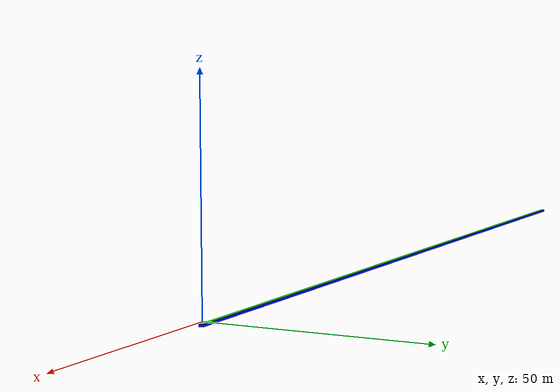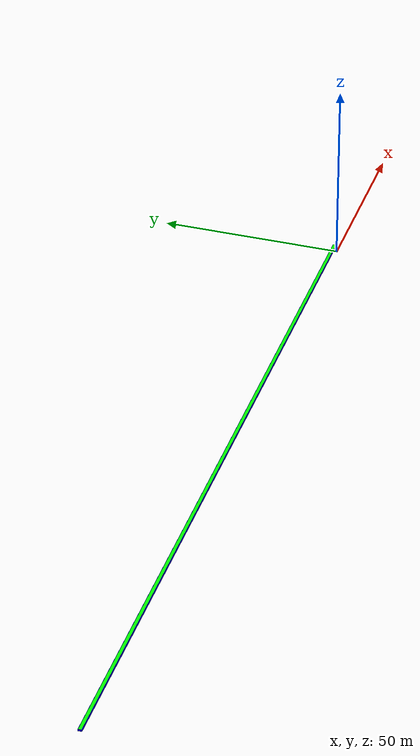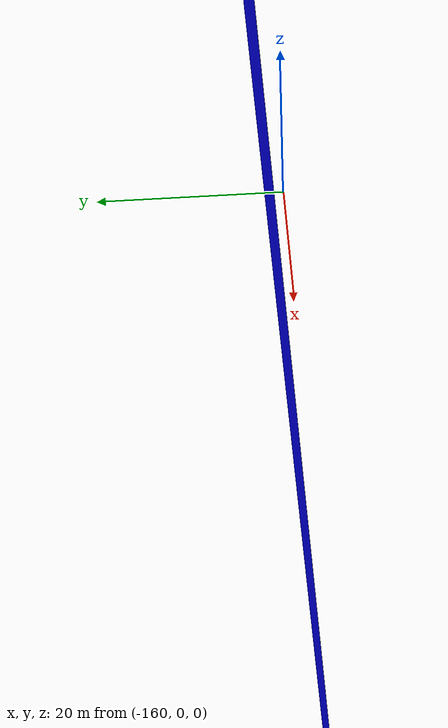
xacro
<robot name="Fliessband">
    <link name="link_2">
        <inertial>
            <origin xyz="-97 1.5 -0.15" rpy="0.0 0.0 0.0"/>
            <mass value="500000"/>
            <inertia ixx="52083.3" ixy="0.0" ixz="0.0" iyy="4.16677e+08" iyz="0.0" izz="4.16708e+08"/>
        </inertial>
        <visual name="">
            <origin xyz="-97 1.5 -0.15" rpy="0.0 0.0 0.0"/>
            <geometry>
                <box size="200 1 0.5"/>
            </geometry>
            <material name="">
                <color rgba="0.0 0.0 1.0 1.0"/>
                <texture filename=""/>
            </material>
        </visual>
        <collision>
            <origin xyz="-97 1.5 -0.15" rpy="0.0 0.0 0.0"/>
            <geometry>
                <box size="200 1 0.5"/>
            </geometry>
        </collision>

    </link>

    <link name="link_2_clone">
        <inertial>
            <origin xyz="-97 1.5 0.15" rpy="0.0 0.0 0.0"/>
            <mass value="20000"/>
            <inertia ixx="1041.67" ixy="0.0" ixz="0.0" iyy="8.33354e+06" iyz="0.0" izz="8.33354e+06"/>
        </inertial>
        <visual name="">
            <origin xyz="-97 1.5 0.15" rpy="0.0 0.0 0.0"/>
            <geometry>
                <box size="200 0.8 0.01"/>
            </geometry>
            <material name="">
                <color rgba="1.0 0.0 0.0 0.0"/>
                <texture filename=""/>
            </material>
        </visual>
        <collision>
            <origin xyz="-97 1.5 0.15" rpy="0.0 0.0 0.0"/>
            <geometry>
                <box size="200 0.8 0.01"/>
            </geometry>
        </collision>
    </link>

    <link name="link_2_clone_clone">
        <inertial>
            <origin xyz="-97 1.5 0.17" rpy="0.0 0.0 0.0"/>
            <mass value="200"/>
            <inertia ixx="10" ixy="0.0" ixz="0.0" iyy="20000" iyz="0.0" izz="20000"/>
        </inertial>
        <visual name="">
            <origin xyz="-97 1.5 0.17" rpy="0.0 0.0 0.0"/>
            <geometry>
                <box size="200 0.8 0.01"/>
            </geometry>
            <material name="">
                <color rgba="0.0 1.0 0.0 0.0"/>
                <texture filename=""/>
            </material>
        </visual>
        <collision>
            <origin xyz="-97 1.5 0.17" rpy="0.0 0.0 0.0"/>
            <geometry>
                <box size="200 0.8 0.01"/>
            </geometry>
        </collision>
    </link>

    <gazebo reference="link_2_clone_clone">
      <kp>2000000.0</kp>
      <kd>2000.0</kd>
      <mu1>200000.0</mu1>
      <mu2>200000.0</mu2>
      <minDepth>0.000000000000001</minDepth>
    </gazebo>

    <joint name="notMovable" type="prismatic">
        <parent link="link_2"/>
        <child link="link_2_clone"/>
        <limit effort="-1.0" lower="0" upper="0" velocity="-1.0"/>
        <origin rpy="0 0 0" xyz="0 0 0"/>
      </joint>

    <joint name="Movable" type="prismatic">
        <parent link="link_2"/>
        <child link="link_2_clone_clone"/>
        <limit effort="200.0" lower="-200000" upper="200000" velocity="0.5"/>
        <origin rpy="0 0 0" xyz="0 0 0"/>
      </joint>

      <gazebo reference="link_2">
       <material>Gazebo/White</material>
      </gazebo>

      <gazebo reference="link_2_clone">
       <material>Gazebo/Black</material>
      </gazebo>

      <gazebo reference="link_2_clone_clone">
       <material>Gazebo/Black</material>
      </gazebo>

</robot>
